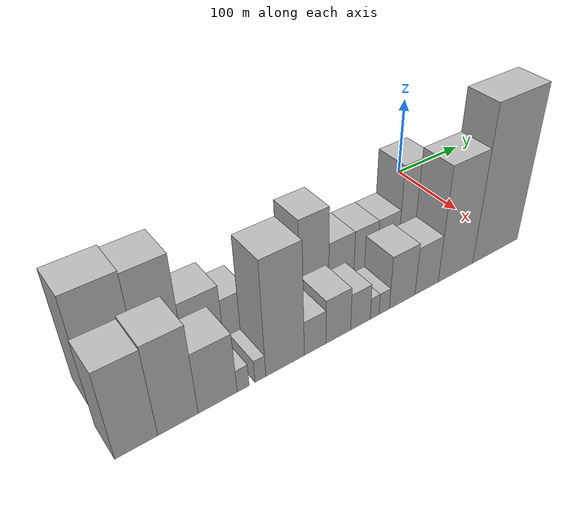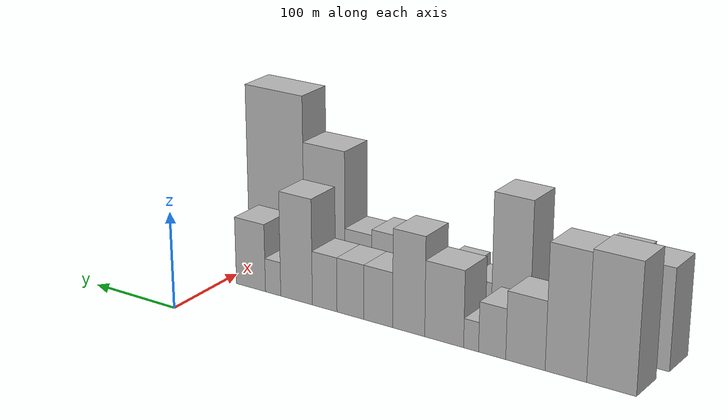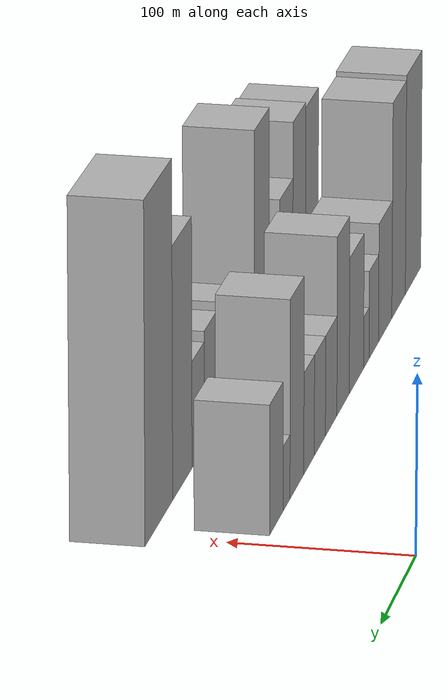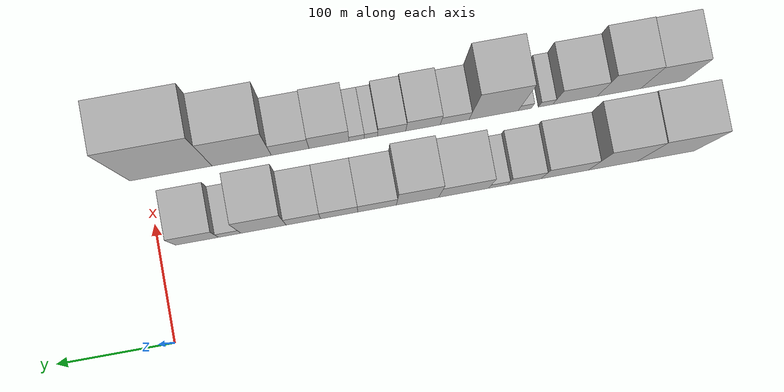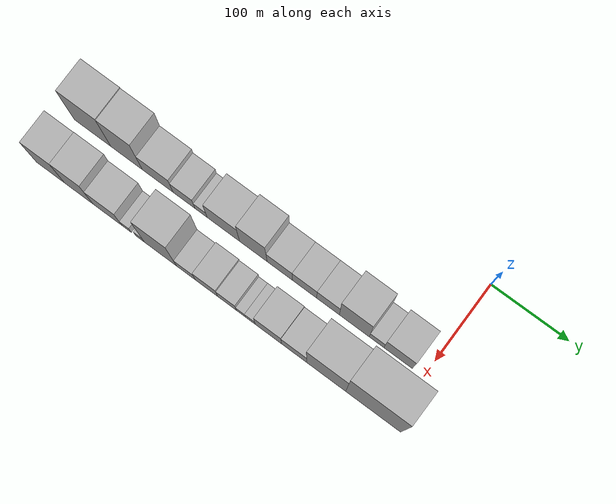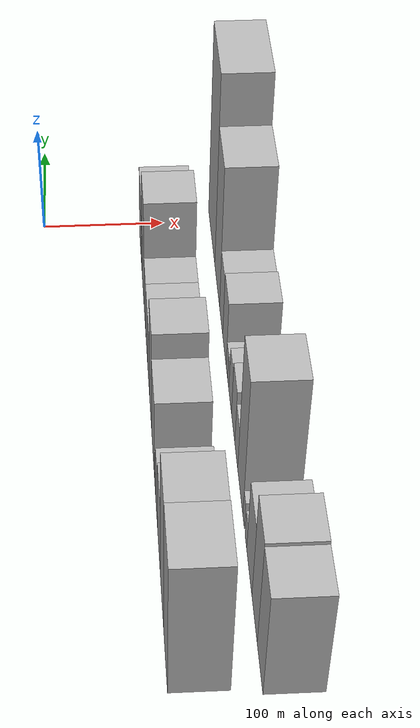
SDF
<sdf version="1.6">
 <world name="default">
  <model name="building_1">
   <static>1</static>
   <pose>100.0000 -431.6292 0 0.000000 0.000000 0.000000</pose>
   <link name="link">
    <pose>0 0 64.50 0 0 0</pose>
    <collision name="collision"><geometry><box><size>40.0000 48.7415 129.0000</size></box></geometry></collision>
    <visual name="visual">
     <cast_shadows>0</cast_shadows>
     <geometry><box><size>40.0000 48.7415 129.0000</size></box></geometry>
     <material>
      <script>
       <uri>model://HANNAS_wall/materials/scripts</uri>
       <uri>model://HANNAS_wall/materials/textures</uri>
       <name>vrc/HANNAS_wall</name>
      </script>
     </material>
    </visual>
   </link>
  </model>
  <model name="building_2">
   <static>1</static>
   <pose>100.0000 -386.3340 0 0.000000 0.000000 0.000000</pose>
   <link name="link">
    <pose>0 0 63.00 0 0 0</pose>
    <collision name="collision"><geometry><box><size>40.0000 41.8489 126.0000</size></box></geometry></collision>
    <visual name="visual">
     <cast_shadows>0</cast_shadows>
     <geometry><box><size>40.0000 41.8489 126.0000</size></box></geometry>
     <material>
      <script>
       <uri>model://HANNAS_wall/materials/scripts</uri>
       <uri>model://HANNAS_wall/materials/textures</uri>
       <name>vrc/HANNAS_wall</name>
      </script>
     </material>
    </visual>
   </link>
  </model>
  <model name="building_3">
   <static>1</static>
   <pose>100.0000 -345.0512 0 0.000000 0.000000 0.000000</pose>
   <link name="link">
    <pose>0 0 34.50 0 0 0</pose>
    <collision name="collision"><geometry><box><size>40.0000 40.7167 69.0000</size></box></geometry></collision>
    <visual name="visual">
     <cast_shadows>0</cast_shadows>
     <geometry><box><size>40.0000 40.7167 69.0000</size></box></geometry>
     <material>
      <script>
       <uri>model://HANNAS_wall/materials/scripts</uri>
       <uri>model://HANNAS_wall/materials/textures</uri>
       <name>vrc/HANNAS_wall</name>
      </script>
     </material>
    </visual>
   </link>
  </model>
  <model name="building_4">
   <static>1</static>
   <pose>100.0000 -310.3481 0 0.000000 0.000000 0.000000</pose>
   <link name="link">
    <pose>0 0 25.50 0 0 0</pose>
    <collision name="collision"><geometry><box><size>40.0000 28.6895 51.0000</size></box></geometry></collision>
    <visual name="visual">
     <cast_shadows>0</cast_shadows>
     <geometry><box><size>40.0000 28.6895 51.0000</size></box></geometry>
     <material>
      <script>
       <uri>model://HANNAS_wall/materials/scripts</uri>
       <uri>model://HANNAS_wall/materials/textures</uri>
       <name>vrc/HANNAS_wall</name>
      </script>
     </material>
    </visual>
   </link>
  </model>
  <model name="building_5">
   <static>1</static>
   <pose>100.0000 -287.9928 0 0.000000 0.000000 0.000000</pose>
   <link name="link">
    <pose>0 0 15.00 0 0 0</pose>
    <collision name="collision"><geometry><box><size>40.0000 16.0211 30.0000</size></box></geometry></collision>
    <visual name="visual">
     <cast_shadows>0</cast_shadows>
     <geometry><box><size>40.0000 16.0211 30.0000</size></box></geometry>
     <material>
      <script>
       <uri>model://HANNAS_wall/materials/scripts</uri>
       <uri>model://HANNAS_wall/materials/textures</uri>
       <name>vrc/HANNAS_wall</name>
      </script>
     </material>
    </visual>
   </link>
  </model>
  <model name="building_6">
   <static>1</static>
   <pose>100.0000 -258.7509 0 0.000000 0.000000 0.000000</pose>
   <link name="link">
    <pose>0 0 39.00 0 0 0</pose>
    <collision name="collision"><geometry><box><size>40.0000 42.4628 78.0000</size></box></geometry></collision>
    <visual name="visual">
     <cast_shadows>0</cast_shadows>
     <geometry><box><size>40.0000 42.4628 78.0000</size></box></geometry>
     <material>
      <script>
       <uri>model://HANNAS_wall/materials/scripts</uri>
       <uri>model://HANNAS_wall/materials/textures</uri>
       <name>vrc/HANNAS_wall</name>
      </script>
     </material>
    </visual>
   </link>
  </model>
  <model name="building_7">
   <static>1</static>
   <pose>100.0000 -219.5219 0 0.000000 0.000000 0.000000</pose>
   <link name="link">
    <pose>0 0 51.00 0 0 0</pose>
    <collision name="collision"><geometry><box><size>40.0000 35.9952 102.0000</size></box></geometry></collision>
    <visual name="visual">
     <cast_shadows>0</cast_shadows>
     <geometry><box><size>40.0000 35.9952 102.0000</size></box></geometry>
     <material>
      <script>
       <uri>model://HANNAS_wall/materials/scripts</uri>
       <uri>model://HANNAS_wall/materials/textures</uri>
       <name>vrc/HANNAS_wall</name>
      </script>
     </material>
    </visual>
   </link>
  </model>
  <model name="building_8">
   <static>1</static>
   <pose>100.0000 -185.1038 0 0.000000 0.000000 0.000000</pose>
   <link name="link">
    <pose>0 0 28.50 0 0 0</pose>
    <collision name="collision"><geometry><box><size>40.0000 32.8408 57.0000</size></box></geometry></collision>
    <visual name="visual">
     <cast_shadows>0</cast_shadows>
     <geometry><box><size>40.0000 32.8408 57.0000</size></box></geometry>
     <material>
      <script>
       <uri>model://HANNAS_wall/materials/scripts</uri>
       <uri>model://HANNAS_wall/materials/textures</uri>
       <name>vrc/HANNAS_wall</name>
      </script>
     </material>
    </visual>
   </link>
  </model>
  <model name="building_9">
   <static>1</static>
   <pose>100.0000 -152.9607 0 0.000000 0.000000 0.000000</pose>
   <link name="link">
    <pose>0 0 28.50 0 0 0</pose>
    <collision name="collision"><geometry><box><size>40.0000 31.4455 57.0000</size></box></geometry></collision>
    <visual name="visual">
     <cast_shadows>0</cast_shadows>
     <geometry><box><size>40.0000 31.4455 57.0000</size></box></geometry>
     <material>
      <script>
       <uri>model://HANNAS_wall/materials/scripts</uri>
       <uri>model://HANNAS_wall/materials/textures</uri>
       <name>vrc/HANNAS_wall</name>
      </script>
     </material>
    </visual>
   </link>
  </model>
  <model name="building_10">
   <static>1</static>
   <pose>100.0000 -122.6070 0 0.000000 0.000000 0.000000</pose>
   <link name="link">
    <pose>0 0 28.50 0 0 0</pose>
    <collision name="collision"><geometry><box><size>40.0000 29.2618 57.0000</size></box></geometry></collision>
    <visual name="visual">
     <cast_shadows>0</cast_shadows>
     <geometry><box><size>40.0000 29.2618 57.0000</size></box></geometry>
     <material>
      <script>
       <uri>model://HANNAS_wall/materials/scripts</uri>
       <uri>model://HANNAS_wall/materials/textures</uri>
       <name>vrc/HANNAS_wall</name>
      </script>
     </material>
    </visual>
   </link>
  </model>
  <model name="building_11">
   <static>1</static>
   <pose>100.0000 -88.7973 0 0.000000 0.000000 0.000000</pose>
   <link name="link">
    <pose>0 0 55.50 0 0 0</pose>
    <collision name="collision"><geometry><box><size>40.0000 38.3575 111.0000</size></box></geometry></collision>
    <visual name="visual">
     <cast_shadows>0</cast_shadows>
     <geometry><box><size>40.0000 38.3575 111.0000</size></box></geometry>
     <material>
      <script>
       <uri>model://HANNAS_wall/materials/scripts</uri>
       <uri>model://HANNAS_wall/materials/textures</uri>
       <name>vrc/HANNAS_wall</name>
      </script>
     </material>
    </visual>
   </link>
  </model>
  <model name="building_12">
   <static>1</static>
   <pose>100.0000 -60.1758 0 0.000000 0.000000 0.000000</pose>
   <link name="link">
    <pose>0 0 18.00 0 0 0</pose>
    <collision name="collision"><geometry><box><size>40.0000 18.8855 36.0000</size></box></geometry></collision>
    <visual name="visual">
     <cast_shadows>0</cast_shadows>
     <geometry><box><size>40.0000 18.8855 36.0000</size></box></geometry>
     <material>
      <script>
       <uri>model://HANNAS_wall/materials/scripts</uri>
       <uri>model://HANNAS_wall/materials/textures</uri>
       <name>vrc/HANNAS_wall</name>
      </script>
     </material>
    </visual>
   </link>
  </model>
  <model name="building_13">
   <static>1</static>
   <pose>100.0000 -32.5229 0 0.000000 0.000000 0.000000</pose>
   <link name="link">
    <pose>0 0 36.00 0 0 0</pose>
    <collision name="collision"><geometry><box><size>40.0000 36.4202 72.0000</size></box></geometry></collision>
    <visual name="visual">
     <cast_shadows>0</cast_shadows>
     <geometry><box><size>40.0000 36.4202 72.0000</size></box></geometry>
     <material>
      <script>
       <uri>model://HANNAS_wall/materials/scripts</uri>
       <uri>model://HANNAS_wall/materials/textures</uri>
       <name>vrc/HANNAS_wall</name>
      </script>
     </material>
    </visual>
   </link>
  </model>
  <model name="building_27">
   <static>1</static>
   <pose>160.0000 -441.1111 0 0.000000 0.000000 0.000000</pose>
   <link name="link">
    <pose>0 0 51.00 0 0 0</pose>
    <collision name="collision"><geometry><box><size>40.0000 37.7779 102.0000</size></box></geometry></collision>
    <visual name="visual">
     <cast_shadows>0</cast_shadows>
     <geometry><box><size>40.0000 37.7779 102.0000</size></box></geometry>
     <material>
      <script>
       <uri>model://HANNAS_wall/materials/scripts</uri>
       <uri>model://HANNAS_wall/materials/textures</uri>
       <name>vrc/HANNAS_wall</name>
      </script>
     </material>
    </visual>
   </link>
  </model>
  <model name="building_28">
   <static>1</static>
   <pose>160.0000 -403.4846 0 0.000000 0.000000 0.000000</pose>
   <link name="link">
    <pose>0 0 52.50 0 0 0</pose>
    <collision name="collision"><geometry><box><size>40.0000 37.4750 105.0000</size></box></geometry></collision>
    <visual name="visual">
     <cast_shadows>0</cast_shadows>
     <geometry><box><size>40.0000 37.4750 105.0000</size></box></geometry>
     <material>
      <script>
       <uri>model://HANNAS_wall/materials/scripts</uri>
       <uri>model://HANNAS_wall/materials/textures</uri>
       <name>vrc/HANNAS_wall</name>
      </script>
     </material>
    </visual>
   </link>
  </model>
  <model name="building_29">
   <static>1</static>
   <pose>160.0000 -365.6365 0 0.000000 0.000000 0.000000</pose>
   <link name="link">
    <pose>0 0 36.00 0 0 0</pose>
    <collision name="collision"><geometry><box><size>40.0000 38.2213 72.0000</size></box></geometry></collision>
    <visual name="visual">
     <cast_shadows>0</cast_shadows>
     <geometry><box><size>40.0000 38.2213 72.0000</size></box></geometry>
     <material>
      <script>
       <uri>model://HANNAS_wall/materials/scripts</uri>
       <uri>model://HANNAS_wall/materials/textures</uri>
       <name>vrc/HANNAS_wall</name>
      </script>
     </material>
    </visual>
   </link>
  </model>
  <model name="building_30">
   <static>1</static>
   <pose>160.0000 -340.3477 0 0.000000 0.000000 0.000000</pose>
   <link name="link">
    <pose>0 0 13.50 0 0 0</pose>
    <collision name="collision"><geometry><box><size>40.0000 12.3562 27.0000</size></box></geometry></collision>
    <visual name="visual">
     <cast_shadows>0</cast_shadows>
     <geometry><box><size>40.0000 12.3562 27.0000</size></box></geometry>
     <material>
      <script>
       <uri>model://HANNAS_wall/materials/scripts</uri>
       <uri>model://HANNAS_wall/materials/textures</uri>
       <name>vrc/HANNAS_wall</name>
      </script>
     </material>
    </visual>
   </link>
  </model>
  <model name="building_31">
   <static>1</static>
   <pose>160.0000 -322.4974 0 0.000000 0.000000 0.000000</pose>
   <link name="link">
    <pose>0 0 13.50 0 0 0</pose>
    <collision name="collision"><geometry><box><size>40.0000 11.3445 27.0000</size></box></geometry></collision>
    <visual name="visual">
     <cast_shadows>0</cast_shadows>
     <geometry><box><size>40.0000 11.3445 27.0000</size></box></geometry>
     <material>
      <script>
       <uri>model://HANNAS_wall/materials/scripts</uri>
       <uri>model://HANNAS_wall/materials/textures</uri>
       <name>vrc/HANNAS_wall</name>
      </script>
     </material>
    </visual>
   </link>
  </model>
  <model name="building_32">
   <static>1</static>
   <pose>160.0000 -295.7789 0 0.000000 0.000000 0.000000</pose>
   <link name="link">
    <pose>0 0 67.50 0 0 0</pose>
    <collision name="collision"><geometry><box><size>40.0000 42.0925 135.0000</size></box></geometry></collision>
    <visual name="visual">
     <cast_shadows>0</cast_shadows>
     <geometry><box><size>40.0000 42.0925 135.0000</size></box></geometry>
     <material>
      <script>
       <uri>model://HANNAS_wall/materials/scripts</uri>
       <uri>model://HANNAS_wall/materials/textures</uri>
       <name>vrc/HANNAS_wall</name>
      </script>
     </material>
    </visual>
   </link>
  </model>
  <model name="building_33">
   <static>1</static>
   <pose>160.0000 -262.3763 0 0.000000 0.000000 0.000000</pose>
   <link name="link">
    <pose>0 0 21.00 0 0 0</pose>
    <collision name="collision"><geometry><box><size>40.0000 24.7126 42.0000</size></box></geometry></collision>
    <visual name="visual">
     <cast_shadows>0</cast_shadows>
     <geometry><box><size>40.0000 24.7126 42.0000</size></box></geometry>
     <material>
      <script>
       <uri>model://HANNAS_wall/materials/scripts</uri>
       <uri>model://HANNAS_wall/materials/textures</uri>
       <name>vrc/HANNAS_wall</name>
      </script>
     </material>
    </visual>
   </link>
  </model>
  <model name="building_34">
   <static>1</static>
   <pose>160.0000 -235.3189 0 0.000000 0.000000 0.000000</pose>
   <link name="link">
    <pose>0 0 27.00 0 0 0</pose>
    <collision name="collision"><geometry><box><size>40.0000 29.4022 54.0000</size></box></geometry></collision>
    <visual name="visual">
     <cast_shadows>0</cast_shadows>
     <geometry><box><size>40.0000 29.4022 54.0000</size></box></geometry>
     <material>
      <script>
       <uri>model://HANNAS_wall/materials/scripts</uri>
       <uri>model://HANNAS_wall/materials/textures</uri>
       <name>vrc/HANNAS_wall</name>
      </script>
     </material>
    </visual>
   </link>
  </model>
  <model name="building_35">
   <static>1</static>
   <pose>160.0000 -208.6016 0 0.000000 0.000000 0.000000</pose>
   <link name="link">
    <pose>0 0 22.50 0 0 0</pose>
    <collision name="collision"><geometry><box><size>40.0000 24.0325 45.0000</size></box></geometry></collision>
    <visual name="visual">
     <cast_shadows>0</cast_shadows>
     <geometry><box><size>40.0000 24.0325 45.0000</size></box></geometry>
     <material>
      <script>
       <uri>model://HANNAS_wall/materials/scripts</uri>
       <uri>model://HANNAS_wall/materials/textures</uri>
       <name>vrc/HANNAS_wall</name>
      </script>
     </material>
    </visual>
   </link>
  </model>
  <model name="building_36">
   <static>1</static>
   <pose>160.0000 -190.9223 0 0.000000 0.000000 0.000000</pose>
   <link name="link">
    <pose>0 0 13.50 0 0 0</pose>
    <collision name="collision"><geometry><box><size>40.0000 11.3261 27.0000</size></box></geometry></collision>
    <visual name="visual">
     <cast_shadows>0</cast_shadows>
     <geometry><box><size>40.0000 11.3261 27.0000</size></box></geometry>
     <material>
      <script>
       <uri>model://HANNAS_wall/materials/scripts</uri>
       <uri>model://HANNAS_wall/materials/textures</uri>
       <name>vrc/HANNAS_wall</name>
      </script>
     </material>
    </visual>
   </link>
  </model>
  <model name="building_37">
   <static>1</static>
   <pose>160.0000 -178.6644 0 0.000000 0.000000 0.000000</pose>
   <link name="link">
    <pose>0 0 13.50 0 0 0</pose>
    <collision name="collision"><geometry><box><size>40.0000 13.1896 27.0000</size></box></geometry></collision>
    <visual name="visual">
     <cast_shadows>0</cast_shadows>
     <geometry><box><size>40.0000 13.1896 27.0000</size></box></geometry>
     <material>
      <script>
       <uri>model://HANNAS_wall/materials/scripts</uri>
       <uri>model://HANNAS_wall/materials/textures</uri>
       <name>vrc/HANNAS_wall</name>
      </script>
     </material>
    </visual>
   </link>
  </model>
  <model name="building_38">
   <static>1</static>
   <pose>160.0000 -155.0651 0 0.000000 0.000000 0.000000</pose>
   <link name="link">
    <pose>0 0 33.00 0 0 0</pose>
    <collision name="collision"><geometry><box><size>40.0000 34.0090 66.0000</size></box></geometry></collision>
    <visual name="visual">
     <cast_shadows>0</cast_shadows>
     <geometry><box><size>40.0000 34.0090 66.0000</size></box></geometry>
     <material>
      <script>
       <uri>model://HANNAS_wall/materials/scripts</uri>
       <uri>model://HANNAS_wall/materials/textures</uri>
       <name>vrc/HANNAS_wall</name>
      </script>
     </material>
    </visual>
   </link>
  </model>
  <model name="building_39">
   <static>1</static>
   <pose>160.0000 -122.0025 0 0.000000 0.000000 0.000000</pose>
   <link name="link">
    <pose>0 0 30.00 0 0 0</pose>
    <collision name="collision"><geometry><box><size>40.0000 32.1162 60.0000</size></box></geometry></collision>
    <visual name="visual">
     <cast_shadows>0</cast_shadows>
     <geometry><box><size>40.0000 32.1162 60.0000</size></box></geometry>
     <material>
      <script>
       <uri>model://HANNAS_wall/materials/scripts</uri>
       <uri>model://HANNAS_wall/materials/textures</uri>
       <name>vrc/HANNAS_wall</name>
      </script>
     </material>
    </visual>
   </link>
  </model>
  <model name="building_40">
   <static>1</static>
   <pose>160.0000 -80.8237 0 0.000000 0.000000 0.000000</pose>
   <link name="link">
    <pose>0 0 70.50 0 0 0</pose>
    <collision name="collision"><geometry><box><size>40.0000 50.2415 141.0000</size></box></geometry></collision>
    <visual name="visual">
     <cast_shadows>0</cast_shadows>
     <geometry><box><size>40.0000 50.2415 141.0000</size></box></geometry>
     <material>
      <script>
       <uri>model://HANNAS_wall/materials/scripts</uri>
       <uri>model://HANNAS_wall/materials/textures</uri>
       <name>vrc/HANNAS_wall</name>
      </script>
     </material>
    </visual>
   </link>
  </model>
  <model name="building_41">
   <static>1</static>
   <pose>160.0000 -20.6241 0 0.000000 0.000000 0.000000</pose>
   <link name="link">
    <pose>0 0 94.50 0 0 0</pose>
    <collision name="collision"><geometry><box><size>40.0000 70.1576 189.0000</size></box></geometry></collision>
    <visual name="visual">
     <cast_shadows>0</cast_shadows>
     <geometry><box><size>40.0000 70.1576 189.0000</size></box></geometry>
     <material>
      <script>
       <uri>model://HANNAS_wall/materials/scripts</uri>
       <uri>model://HANNAS_wall/materials/textures</uri>
       <name>vrc/HANNAS_wall</name>
      </script>
     </material>
    </visual>
   </link>
  </model>
 </world>
</sdf>
